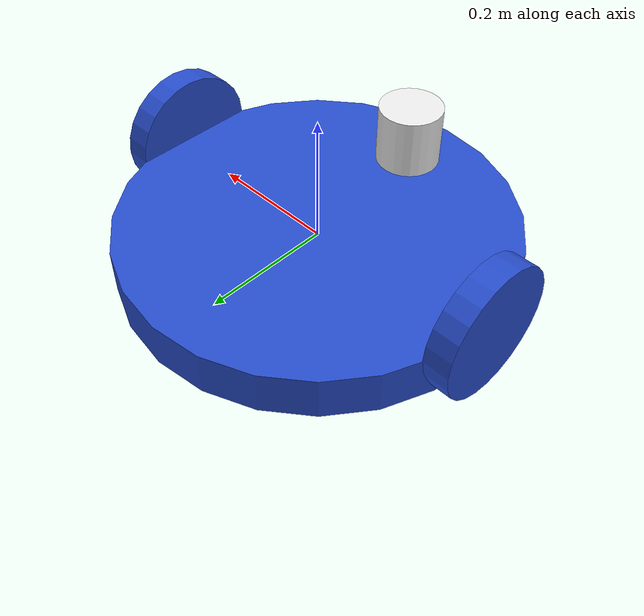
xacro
<?xml version="1.0" ?>

<robot name="m2wr" xmlns:xacro="https://www.ros.org/wiki/xacro" >

  <xacro:include filename="$(find m2wr_description)/urdf/materials.xacro" />

  <xacro:include filename="$(find m2wr_description)/urdf/gazebo.xacro" />

  <xacro:include filename="$(find m2wr_description)/urdf/macro.xacro" />

  <link name="link_chassis">
    <!-- pose and inertial -->
    <pose>0 0 0.3 0 0 0</pose>

    <inertial>
      <mass value="5"/>
      <origin rpy="0 1.5707 0" xyz="0 0 0.1"/>
      <inertia ixx="0.0395416666667" ixy="0" ixz="0" iyy="0.106208333333" iyz="0" izz="0.106208333333"/>
    </inertial>

    <collision name="collision_chassis">
      <geometry>
        <cylinder length="0.07" radius="0.3"/>
      </geometry>
    </collision>

    <visual>
      <origin rpy="0 0 0" xyz="0 0 0"/>
      <geometry>
        <cylinder length="0.07" radius="0.3"/>
      </geometry>
      <material name="blue"/>
    </visual>

    <!-- caster front -->
    <collision name="caster_front_collision">
      <origin rpy=" 0 0 0" xyz="0 -0.25 -0.05"/>
      <geometry>
        <sphere radius="0.03"/>
      </geometry>
      <surface>
        <friction>
          <ode>
            <mu>0</mu>
            <mu2>0</mu2>
            <slip1>1.0</slip1>
            <slip2>1.0</slip2>
          </ode>
        </friction>
      </surface>
    </collision>
    <visual name="caster_front_visual">
      <origin rpy=" 0 0 0" xyz="0 -0.25 -0.05"/>
      <geometry>
        <sphere radius="0.03"/>
      </geometry>
     </visual>

      <collision name="caster_back_collision">
      <origin rpy=" 0 0 0" xyz="0 0.25 -0.02"/>
      <geometry>
        <sphere radius="0.03"/>
      </geometry>
      <surface>
        <friction>
          <ode>
            <mu>0</mu>
            <mu2>0</mu2>
            <slip1>1.0</slip1>
            <slip2>1.0</slip2>
          </ode>
        </friction>
      </surface>
    </collision>
    <visual name="caster_front_visual">
      <origin rpy=" 0 0 0" xyz="0 0.25 -0.02"/>
      <geometry>
        <sphere radius="0.03"/>
      </geometry>
    </visual>

  </link>

   <link name="sensor_laser">
    <inertial>
      <origin xyz="0 0 0" rpy="0 0 0" />
      <mass value="1" />
      <!-- RANDOM INERTIA BELOW -->
      <xacro:cylinder_inertia mass="1" r="0.05" l="0.1" />
    </inertial>

    <visual>
      <origin xyz="0 0 0" rpy="0 0 0" />
      <geometry>
        <cylinder radius="0.05" length="0.1"/>
      </geometry>
      <material name="white" />
    </visual>

    <collision>
      <origin xyz="0 0 0" rpy="0 0 0"/>
      <geometry>
        <cylinder radius="0.05" length="0.1"/>
      </geometry>
    </collision>
  </link>

  <joint name="joint_sensor_laser" type="fixed">
    <origin xyz="0 -0.2 0.08" rpy="0 0 0"/>
    <parent link="link_chassis"/>
    <child link="sensor_laser"/>
  </joint>

  <!-- Create wheel right -->

   <xacro:link_wheel name="link_right_wheel" />
   <xacro:joint_wheel name="joint_right_wheel"  child="link_right_wheel"  origin_xyz="0.3 0 0.035"  />

  <!-- Left Wheel link -->

  <xacro:link_wheel name="link_left_wheel" />
  <xacro:joint_wheel name="joint_left_wheel"   child="link_left_wheel"   origin_xyz="-0.3 0 0.035"  />

</robot>

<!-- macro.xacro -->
<robot xmlns:xacro="http://www.ros.org/wiki/xacro">
    <xacro:macro name="link_wheel" params="name">
        <link name="${name}">
            <inertial>
              <mass value="0.2"/>
              <origin rpy="1.5707 1.5707 1.5707" xyz="0 0 0"/>
              <inertia ixx="0.000526666666667" ixy="0" ixz="0" iyy="0.000526666666667" iyz="0" izz="0.001"/>
            </inertial>
            <collision name="link_right_wheel_collision">
              <origin rpy="1.5707 1.5707 1.5707" xyz="0 0 0"/>
              <geometry>
                <cylinder length="0.04" radius="0.1"/>
              </geometry>
            </collision>
            <visual name="${name}_visual">
              <origin rpy="1.5707 1.5707 1.5707" xyz="0 0 0"/>
              <geometry>
                <cylinder length="0.04" radius="0.1"/>
              </geometry>
            </visual>
        </link>
    </xacro:macro>

    <xacro:macro name="joint_wheel" params="name child origin_xyz">
      <joint name="${name}" type="continuous">
        <origin rpy="0 0 0" xyz="${origin_xyz}"/>
        <child link="${child}"/>
        <parent link="link_chassis"/>
        <axis rpy="0 0 0" xyz="1 0 0"/>
        <limit effort="10000" velocity="1000"/>
        <joint_properties damping="1.0" friction="1.0"/>
      </joint>
    </xacro:macro>

    <xacro:macro name="cylinder_inertia" params="mass r l">
    <inertia ixx="${mass*(3*r*r+l*l)/12}" ixy = "0" ixz = "0"
                iyy="${mass*(3*r*r+l*l)/12}" iyz = "0" izz="${mass*(r*r)/2}" />
    </xacro:macro>

</robot>
